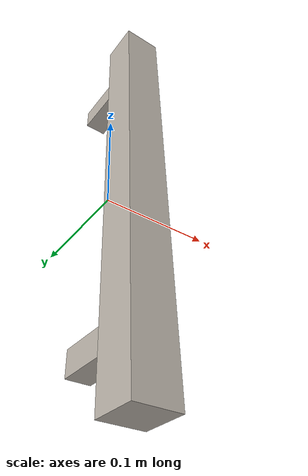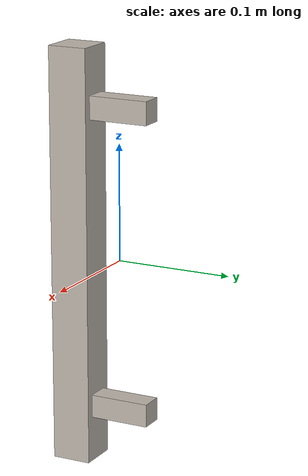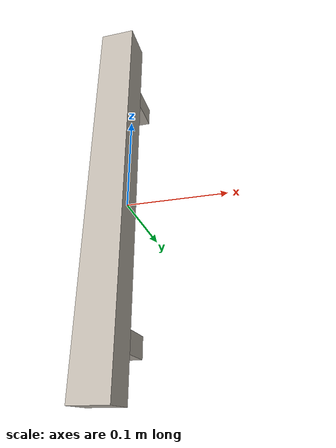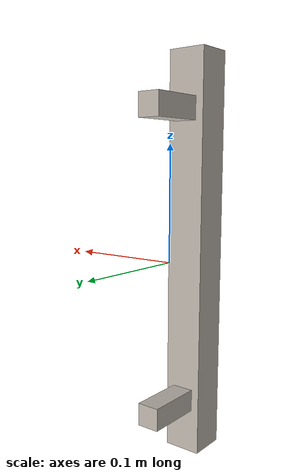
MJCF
<mujoco model="boxed_handle">
  <compiler angle="radian"/>
  <asset>
    <texture file="../handles/visuals/brass_ambra.png" type="cube" name="tex"/>
    <material name="mat" reflectance="0.8" shininess="0.8" texrepeat="1 1" texture="tex"/>
  </asset>
  <default>
    <default class="cab">
      <geom group="0" density="10"/>
    </default>
  </default>
  <worldbody>
    <body>
      <body name="object">
        <geom pos="0 -0.039 0" size="0.017 0.017 0.18" type="box" material="mat" class="cab" name="handle"/>
        <geom pos="0 0 0.13" size="0.01 0.01 0.03" quat="0.707 0.707 0 0" type="box" material="mat" class="cab" name="handle_connector_top"/>
        <geom pos="0 0 -0.13" size="0.01 0.01 0.03" quat="0.707 0.707 0 0" type="box" material="mat" class="cab" name="handle_connector_bottom"/>
      </body>
    </body>
  </worldbody>
</mujoco>
